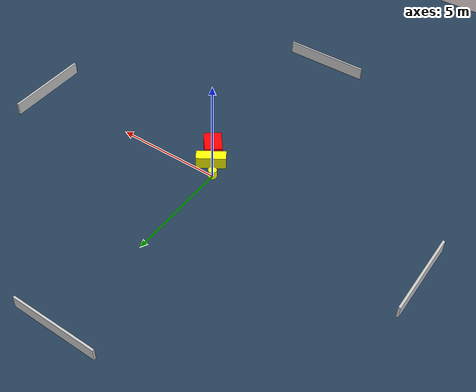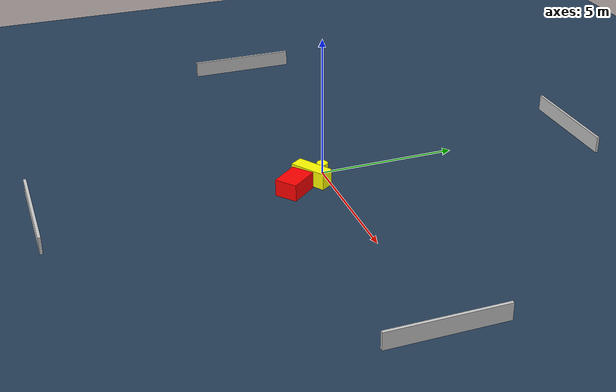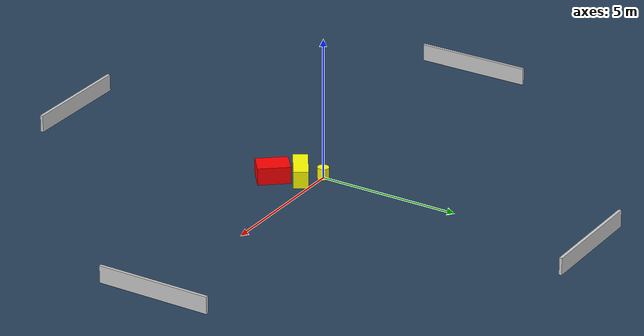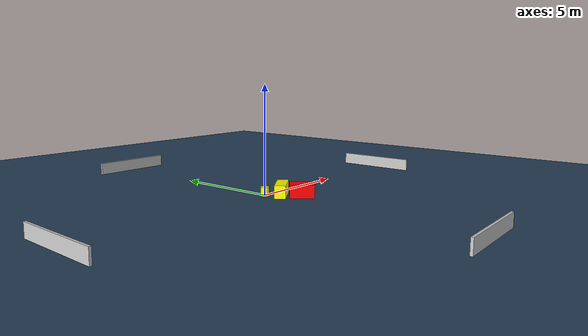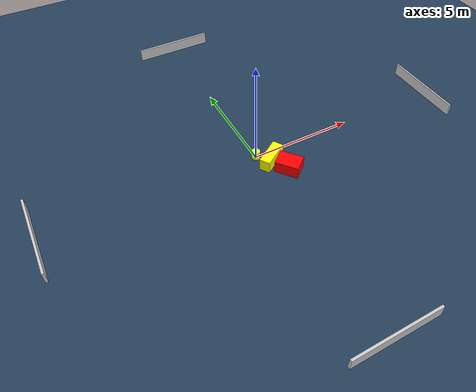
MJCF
<?xml version="1.0" ?>
<mujoco model="generated_environment">
  <option timestep="0.01" integrator="RK4" cone="elliptic"/>
  <default>
    <geom density="1"/>
  </default>
  <asset>
    <texture builtin="gradient" height="3072" name="skybox" rgb1="0.3 0.5 0.7" rgb2="0 0 0" type="skybox" width="512"/>
    <texture builtin="checker" height="300" name="groundplane" rgb1="0.2 0.3 0.4" rgb2="0.1 0.2 0.3" type="2d" width="300"/>
    <material name="groundplane" reflectance="0.2" texrepeat="5 5" texture="groundplane"/>
  </asset>
  <worldbody>
    <light dir="0 0 -1" directional="true" pos="0 0 1.5"/>
    <geom condim="3" friction="0.5 0.005 0.001" material="groundplane" name="floor" pos="0 0 0" size="0 0 0.05" type="plane"/>
    <body name="walls">
      <geom name="wall_1" condim="4" pos="-10.0 0.0 0.3" rgba="0.800000011920929 0.800000011920929 0.800000011920929 1.0" size="0.05 2.0 0.3" type="box"/>
      <geom name="wall_2" condim="4" pos="10.0 0.0 0.3" rgba="0.800000011920929 0.800000011920929 0.800000011920929 1.0" size="0.05 2.0 0.3" type="box"/>
      <geom name="wall_3" condim="4" pos="0.0 -10.0 0.3" rgba="0.800000011920929 0.800000011920929 0.800000011920929 1.0" size="2.0 0.05 0.3" type="box"/>
      <geom name="wall_4" condim="4" pos="0.0 10.0 0.3" rgba="0.800000011920929 0.800000011920929 0.800000011920929 1.0" size="2.0 0.05 0.3" type="box"/>
    </body>
    <body name="robot">
      <joint name="joint_x" type="slide" pos="0 0 0" axis="1 0 0"/>
      <joint name="joint_y" type="slide" pos="0 0 0" axis="0 1 0"/>
      <geom name="robot" type="cylinder" pos="0.0 0.0 0.2" size="0.2 0.2 0.0" mass="5.0" friction="1.0 0.005 0.0001" condim="4" rgba="1.0 1.0 0.0 1.0"/>
    </body>
    <body name="obstacle_1_movable">
      <geom name="obstacle_1_movable" condim="4" pos="0.49027979849660913 -0.5753349262850992 0.3" euler="0 0 213.1873918038191" friction="0.0 0.005 0.001" rgba="1.0 1.0 0.0 1.0" size="0.6801214815183219 0.2548680816076786 0.3" type="box" mass="0.1"/>
      <joint type="free"/>
    </body>
    <body name="obstacle_2_static">
      <geom name="obstacle_2_static" condim="4" pos="0.9532523689956147 -1.3669304702843517 0.3" euler="0 0 129.10404960196112" friction="0.0 0.005 0.001" rgba="1.0 0.0 0.0 1.0" size="0.5556304045179614 0.40867207008718726 0.3" type="box"/>
    </body>
  </worldbody>
  <actuator>
    <motor name="actuator_x" joint="joint_x" gear="1" ctrlrange="-1 1"/>
    <motor name="actuator_y" joint="joint_y" gear="1" ctrlrange="-1 1"/>
  </actuator>
</mujoco>
